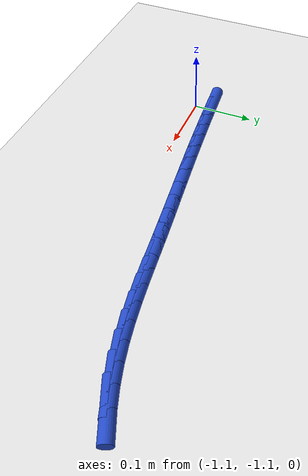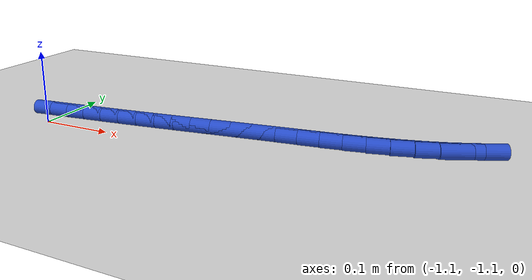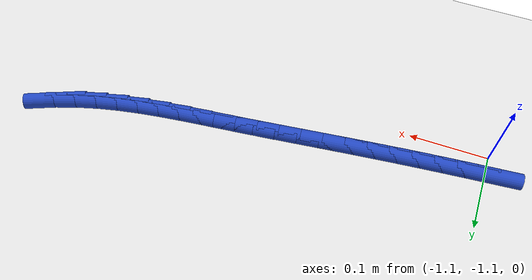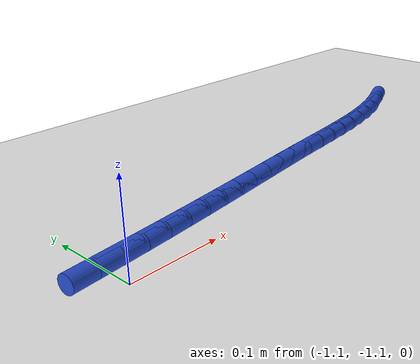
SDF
<sdf version="1.6">
 <world name="default">
  <model name="ground_plane">
   <static>1</static>
   <link name="link">
    <collision name="collision">
     <geometry><plane><normal>0 0 1</normal><size>100 100</size></plane></geometry>
     <surface><friction><ode><mu>100</mu><mu2>50</mu2></ode></friction></surface>
    </collision>
    <visual name="visual">
     <cast_shadows>0</cast_shadows>
     <geometry><plane><normal>0 0 1</normal><size>100 100</size></plane></geometry>
     <material>
      <script><uri>file://media/materials/scripts/gazebo.material</uri><name>Gazebo/WhiteGlow</name></script>
     </material>
    </visual>
   </link>
  </model>
  <model name="line">
   <link name="link_188">
    <pose>-1.1022950402521494 -1.0706928490449767 0.01 0 1.57 0.09446400966025444</pose>
    <collision name="collision">
     <geometry><cylinder><radius>0.01</radius><length>0.08</length></cylinder></geometry>
    </collision>
    <visual name="visual">
     <material>
      <script><name>Gazebo/Blue</name><uri>file://media/materials/scripts/gazebo.material</uri></script>
     </material>
     <geometry><cylinder><radius>0.01</radius><length>0.08</length></cylinder></geometry>
    </visual>
   </link>
   <link name="link_189">
    <pose>-1.0745428194472433 -1.068063437193081 0.01 0 1.57 0.09900914901753385</pose>
    <collision name="collision">
     <geometry><cylinder><radius>0.01</radius><length>0.08</length></cylinder></geometry>
    </collision>
    <visual name="visual">
     <material>
      <script><name>Gazebo/Blue</name><uri>file://media/materials/scripts/gazebo.material</uri></script>
     </material>
     <geometry><cylinder><radius>0.01</radius><length>0.08</length></cylinder></geometry>
    </visual>
   </link>
   <link name="link_190">
    <pose>-1.0469582607825114 -1.065323354150958 0.01 0 1.57 0.10372722237637161</pose>
    <collision name="collision">
     <geometry><cylinder><radius>0.01</radius><length>0.08</length></cylinder></geometry>
    </collision>
    <visual name="visual">
     <material>
      <script><name>Gazebo/Blue</name><uri>file://media/materials/scripts/gazebo.material</uri></script>
     </material>
     <geometry><cylinder><radius>0.01</radius><length>0.08</length></cylinder></geometry>
    </visual>
   </link>
   <link name="link_191">
    <pose>-1.0194750158565955 -1.0624623252007455 0.01 0 1.57 0.10858531235287365</pose>
    <collision name="collision">
     <geometry><cylinder><radius>0.01</radius><length>0.08</length></cylinder></geometry>
    </collision>
    <visual name="visual">
     <material>
      <script><name>Gazebo/Blue</name><uri>file://media/materials/scripts/gazebo.material</uri></script>
     </material>
     <geometry><cylinder><radius>0.01</radius><length>0.08</length></cylinder></geometry>
    </visual>
   </link>
   <link name="link_192">
    <pose>-0.992026736268136 -1.0594700756245805 0.01 0 1.57 0.11354816771531473</pose>
    <collision name="collision">
     <geometry><cylinder><radius>0.01</radius><length>0.08</length></cylinder></geometry>
    </collision>
    <visual name="visual">
     <material>
      <script><name>Gazebo/Blue</name><uri>file://media/materials/scripts/gazebo.material</uri></script>
     </material>
     <geometry><cylinder><radius>0.01</radius><length>0.08</length></cylinder></geometry>
    </visual>
   </link>
   <link name="link_193">
    <pose>-0.964547073615774 -1.056336330704601 0.01 0 1.57 0.11838168157092645</pose>
    <collision name="collision">
     <geometry><cylinder><radius>0.01</radius><length>0.08</length></cylinder></geometry>
    </collision>
    <visual name="visual">
     <material>
      <script><name>Gazebo/Blue</name><uri>file://media/materials/scripts/gazebo.material</uri></script>
     </material>
     <geometry><cylinder><radius>0.01</radius><length>0.08</length></cylinder></geometry>
    </visual>
   </link>
   <link name="link_194">
    <pose>-0.9369784680442724 -1.0530573811792356 0.01 0 1.57 0.12197283531074633</pose>
    <collision name="collision">
     <geometry><cylinder><radius>0.01</radius><length>0.08</length></cylinder></geometry>
    </collision>
    <visual name="visual">
     <material>
      <script><name>Gazebo/Blue</name><uri>file://media/materials/scripts/gazebo.material</uri></script>
     </material>
     <geometry><cylinder><radius>0.01</radius><length>0.08</length></cylinder></geometry>
    </visual>
   </link>
   <link name="link_195">
    <pose>-0.9093122149245824 -1.0496660149330472 0.01 0 1.57 0.12396193598684442</pose>
    <collision name="collision">
     <geometry><cylinder><radius>0.01</radius><length>0.08</length></cylinder></geometry>
    </collision>
    <visual name="visual">
     <material>
      <script><name>Gazebo/Blue</name><uri>file://media/materials/scripts/gazebo.material</uri></script>
     </material>
     <geometry><cylinder><radius>0.01</radius><length>0.08</length></cylinder></geometry>
    </visual>
   </link>
   <link name="link_196">
    <pose>-0.8815564877204692 -1.046207628577813 0.01 0 1.57 0.1243681304256938</pose>
    <collision name="collision">
     <geometry><cylinder><radius>0.01</radius><length>0.08</length></cylinder></geometry>
    </collision>
    <visual name="visual">
     <material>
      <script><name>Gazebo/Blue</name><uri>file://media/materials/scripts/gazebo.material</uri></script>
     </material>
     <geometry><cylinder><radius>0.01</radius><length>0.08</length></cylinder></geometry>
    </visual>
   </link>
   <link name="link_197">
    <pose>-0.8537194759663316 -1.0427276307308257 0.01 0 1.57 0.12320608272158715</pose>
    <collision name="collision">
     <geometry><cylinder><radius>0.01</radius><length>0.08</length></cylinder></geometry>
    </collision>
    <visual name="visual">
     <material>
      <script><name>Gazebo/Blue</name><uri>file://media/materials/scripts/gazebo.material</uri></script>
     </material>
     <geometry><cylinder><radius>0.01</radius><length>0.08</length></cylinder></geometry>
    </visual>
   </link>
   <link name="link_198">
    <pose>-0.8258093691965653 -1.039271430009377 0.01 0 1.57 0.12048572528652476</pose>
    <collision name="collision">
     <geometry><cylinder><radius>0.01</radius><length>0.08</length></cylinder></geometry>
    </collision>
    <visual name="visual">
     <material>
      <script><name>Gazebo/Blue</name><uri>file://media/materials/scripts/gazebo.material</uri></script>
     </material>
     <geometry><cylinder><radius>0.01</radius><length>0.08</length></cylinder></geometry>
    </visual>
   </link>
   <link name="link_199">
    <pose>-0.7978343569455683 -1.0358844350307594 0.01 0 1.57 0.11621837612215322</pose>
    <collision name="collision">
     <geometry><cylinder><radius>0.01</radius><length>0.08</length></cylinder></geometry>
    </collision>
    <visual name="visual">
     <material>
      <script><name>Gazebo/Blue</name><uri>file://media/materials/scripts/gazebo.material</uri></script>
     </material>
     <geometry><cylinder><radius>0.01</radius><length>0.08</length></cylinder></geometry>
    </visual>
   </link>
   <link name="link_200">
    <pose>-0.7698026638577856 -1.0326118901233563 0.01 0 1.57 0.11310208817966214</pose>
    <collision name="collision">
     <geometry><cylinder><radius>0.01</radius><length>0.08</length></cylinder></geometry>
    </collision>
    <visual name="visual">
     <material>
      <script><name>Gazebo/Blue</name><uri>file://media/materials/scripts/gazebo.material</uri></script>
     </material>
     <geometry><cylinder><radius>0.01</radius><length>0.08</length></cylinder></geometry>
    </visual>
   </link>
   <link name="link_201">
    <pose>-0.7417385144531691 -1.029424172099638 0.01 0 1.57 0.11808806742643349</pose>
    <collision name="collision">
     <geometry><cylinder><radius>0.01</radius><length>0.08</length></cylinder></geometry>
    </collision>
    <visual name="visual">
     <material>
      <script><name>Gazebo/Blue</name><uri>file://media/materials/scripts/gazebo.material</uri></script>
     </material>
     <geometry><cylinder><radius>0.01</radius><length>0.08</length></cylinder></geometry>
    </visual>
   </link>
   <link name="link_202">
    <pose>-0.713707400174261 -1.0260985592706207 0.01 0 1.57 0.13232179450508533</pose>
    <collision name="collision">
     <geometry><cylinder><radius>0.01</radius><length>0.08</length></cylinder></geometry>
    </collision>
    <visual name="visual">
     <material>
      <script><name>Gazebo/Blue</name><uri>file://media/materials/scripts/gazebo.material</uri></script>
     </material>
     <geometry><cylinder><radius>0.01</radius><length>0.08</length></cylinder></geometry>
    </visual>
   </link>
   <link name="link_203">
    <pose>-0.6857813757047329 -1.0223816188608787 0.01 0 1.57 0.155909084566826</pose>
    <collision name="collision">
     <geometry><cylinder><radius>0.01</radius><length>0.08</length></cylinder></geometry>
    </collision>
    <visual name="visual">
     <material>
      <script><name>Gazebo/Blue</name><uri>file://media/materials/scripts/gazebo.material</uri></script>
     </material>
     <geometry><cylinder><radius>0.01</radius><length>0.08</length></cylinder></geometry>
    </visual>
   </link>
   <link name="link_204">
    <pose>-0.658032495728257 -1.0180199180949872 0.01 0 1.57 0.18898846160569374</pose>
    <collision name="collision">
     <geometry><cylinder><radius>0.01</radius><length>0.08</length></cylinder></geometry>
    </collision>
    <visual name="visual">
     <material>
      <script><name>Gazebo/Blue</name><uri>file://media/materials/scripts/gazebo.material</uri></script>
     </material>
     <geometry><cylinder><radius>0.01</radius><length>0.08</length></cylinder></geometry>
    </visual>
   </link>
   <link name="link_205">
    <pose>-0.6305328149285053 -1.0127600241975205 0.01 0 1.57 0.23166918029974473</pose>
    <collision name="collision">
     <geometry><cylinder><radius>0.01</radius><length>0.08</length></cylinder></geometry>
    </collision>
    <visual name="visual">
     <material>
      <script><name>Gazebo/Blue</name><uri>file://media/materials/scripts/gazebo.material</uri></script>
     </material>
     <geometry><cylinder><radius>0.01</radius><length>0.08</length></cylinder></geometry>
    </visual>
   </link>
   <link name="link_206">
    <pose>-0.6033543879891498 -1.0063485043930538 0.01 0 1.57 0.2839404121499285</pose>
    <collision name="collision">
     <geometry><cylinder><radius>0.01</radius><length>0.08</length></cylinder></geometry>
    </collision>
    <visual name="visual">
     <material>
      <script><name>Gazebo/Blue</name><uri>file://media/materials/scripts/gazebo.material</uri></script>
     </material>
     <geometry><cylinder><radius>0.01</radius><length>0.08</length></cylinder></geometry>
    </visual>
   </link>
   <link name="link_207">
    <pose>-0.5765692695938622 -0.9985319259061614 0.01 0 1.57 0.3442336402050904</pose>
    <collision name="collision">
     <geometry><cylinder><radius>0.01</radius><length>0.08</length></cylinder></geometry>
    </collision>
    <visual name="visual">
     <material>
      <script><name>Gazebo/Blue</name><uri>file://media/materials/scripts/gazebo.material</uri></script>
     </material>
     <geometry><cylinder><radius>0.01</radius><length>0.08</length></cylinder></geometry>
    </visual>
   </link>
   <link name="link_208">
    <pose>-0.5502473644655581 -0.9890953269356665 0.01 0 1.57 0.404294833529935</pose>
    <collision name="collision">
     <geometry><cylinder><radius>0.01</radius><length>0.08</length></cylinder></geometry>
    </collision>
    <visual name="visual">
     <material>
      <script><name>Gazebo/Blue</name><uri>file://media/materials/scripts/gazebo.material</uri></script>
     </material>
     <geometry><cylinder><radius>0.01</radius><length>0.08</length></cylinder></geometry>
    </visual>
   </link>
  </model>
 </world>
</sdf>
